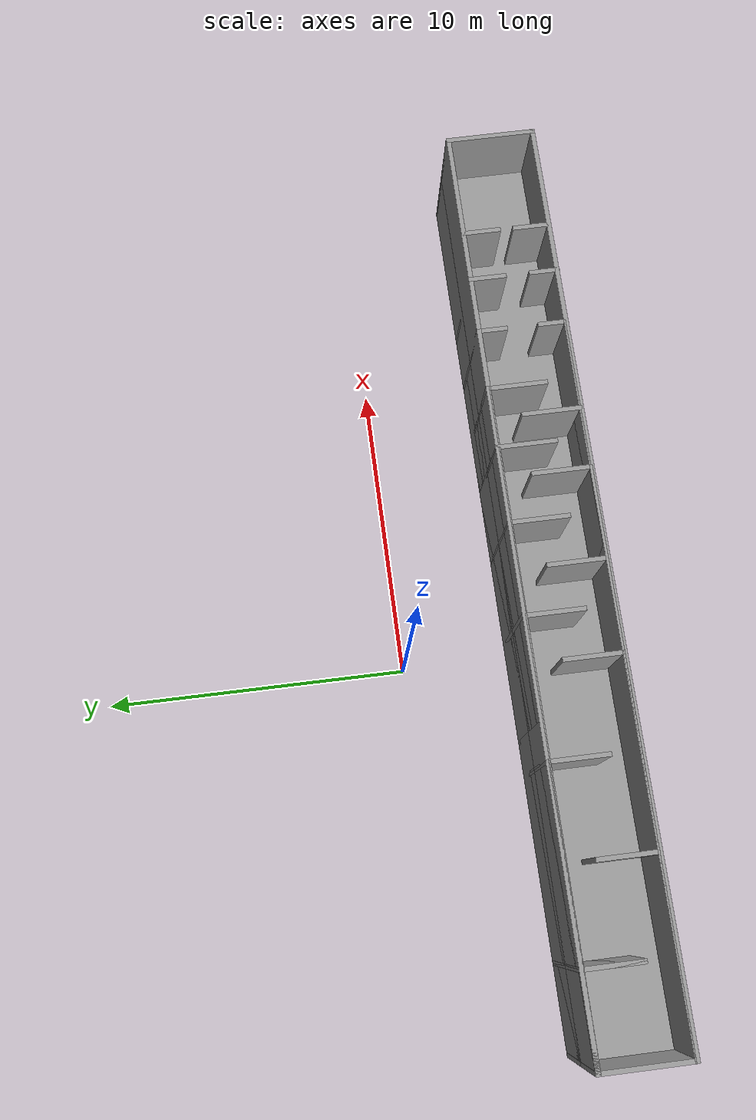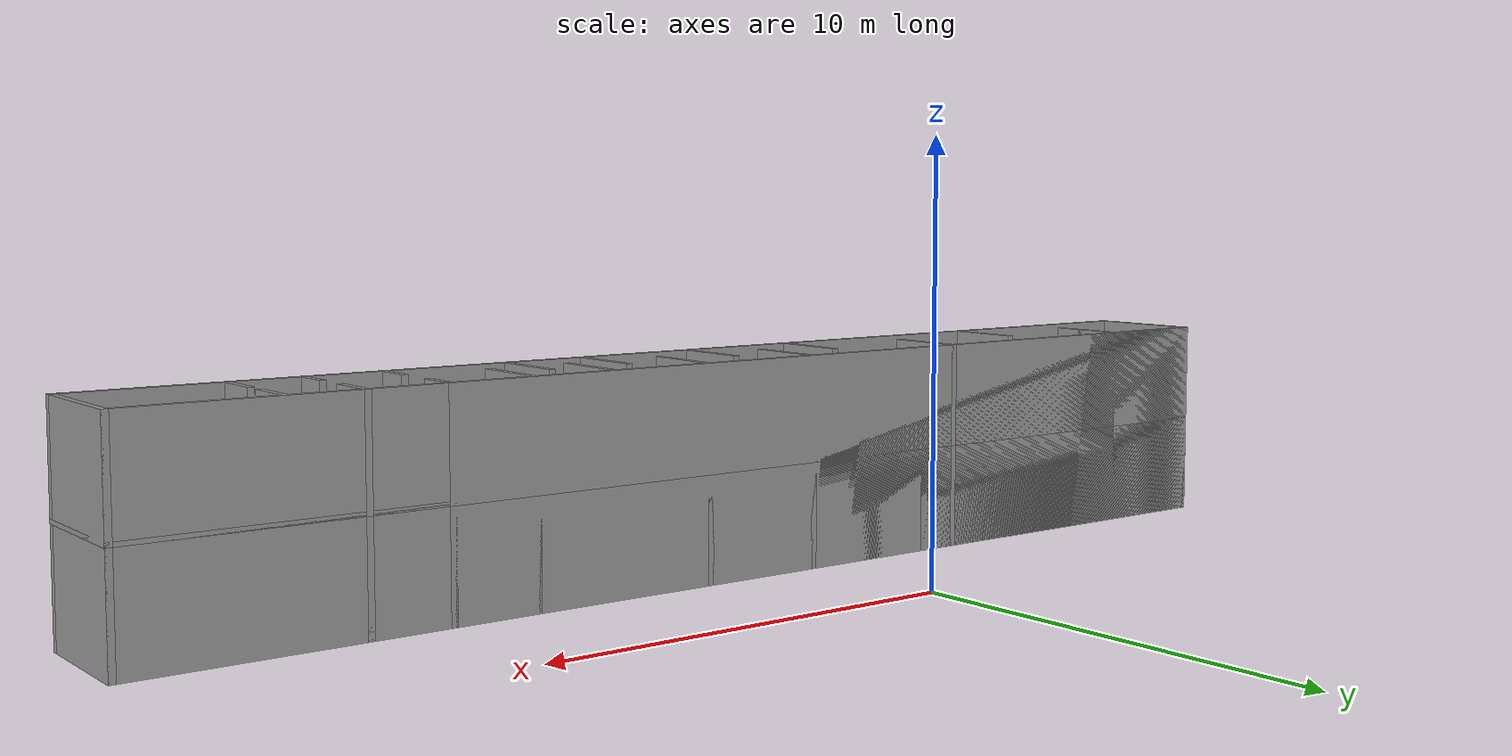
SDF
<?xml version='1.0'?>
<sdf version='1.7'>
  <model name='corridor'>
    <pose>1.995 -3.2725 0 0 -0 0</pose>
    <link name='Floor_0'>
      <collision name='Floor_0_Collision'>
        <geometry>
          <box>
            <size>30 3.01 0.1</size>
          </box>
        </geometry>
        <pose>0 0 0.05 0 -0 0</pose>
      </collision>
      <visual name='Floor_0_Visual'>
        <pose>0 0 0.05 0 -0 0</pose>
        <geometry>
          <box>
            <size>30 3.01 0.1</size>
          </box>
        </geometry>
        <material>
          <script>
            <uri>file://media/materials/scripts/gazebo.material</uri>
            <name>Gazebo/Grey</name>
          </script>
          <ambient>1 1 1 1</ambient>
        </material>
        <meta>
          <layer>1</layer>
        </meta>
      </visual>
      <pose>-0 -1.7675 2.5 0 -0 0</pose>
    </link>
    <link name='Wall_0'>
      <collision name='Wall_0_Collision'>
        <geometry>
          <box>
            <size>20 0.15 2.5</size>
          </box>
        </geometry>
        <pose>0 0 1.25 0 -0 0</pose>
      </collision>
      <visual name='Wall_0_Visual'>
        <pose>0 0 1.25 0 -0 0</pose>
        <geometry>
          <box>
            <size>20 0.15 2.5</size>
          </box>
        </geometry>
        <material>
          <script>
            <uri>file://media/materials/scripts/gazebo.material</uri>
            <name>Gazebo/Grey</name>
          </script>
          <ambient>1 1 1 1</ambient>
        </material>
        <meta>
          <layer>0</layer>
        </meta>
      </visual>
      <pose>5 -0.3375 0 0 -0 0</pose>
    </link>
    <link name='Wall_1'>
      <collision name='Wall_1_Collision'>
        <geometry>
          <box>
            <size>3 0.15 2.5</size>
          </box>
        </geometry>
        <pose>0 0 1.25 0 -0 0</pose>
      </collision>
      <visual name='Wall_1_Visual'>
        <pose>0 0 1.25 0 -0 0</pose>
        <geometry>
          <box>
            <size>3 0.15 2.5</size>
          </box>
        </geometry>
        <material>
          <script>
            <uri>file://media/materials/scripts/gazebo.material</uri>
            <name>Gazebo/Grey</name>
          </script>
          <ambient>1 1 1 1</ambient>
        </material>
        <meta>
          <layer>0</layer>
        </meta>
      </visual>
      <pose>14.925 -1.7625 0 0 -0 -1.5708</pose>
    </link>
    <link name='Wall_10'>
      <collision name='Wall_10_Collision'>
        <geometry>
          <box>
            <size>6 0.15 2.5</size>
          </box>
        </geometry>
        <pose>0 0 1.25 0 -0 0</pose>
      </collision>
      <visual name='Wall_10_Visual'>
        <pose>0 0 1.25 0 -0 0</pose>
        <geometry>
          <box>
            <size>6 0.15 2.5</size>
          </box>
        </geometry>
        <material>
          <script>
            <uri>file://media/materials/scripts/gazebo.material</uri>
            <name>Gazebo/Grey</name>
          </script>
          <ambient>1 1 1 1</ambient>
        </material>
        <meta>
          <layer>0</layer>
        </meta>
      </visual>
      <pose>-12 -3.1875 0 0 -0 0</pose>
    </link>
    <link name='Wall_11'>
      <collision name='Wall_11_Collision'>
        <geometry>
          <box>
            <size>2 0.15 2.5</size>
          </box>
        </geometry>
        <pose>0 0 1.25 0 -0 0</pose>
      </collision>
      <visual name='Wall_11_Visual'>
        <pose>0 0 1.25 0 -0 0</pose>
        <geometry>
          <box>
            <size>2 0.15 2.5</size>
          </box>
        </geometry>
        <material>
          <script>
            <uri>file://media/materials/scripts/gazebo.material</uri>
            <name>Gazebo/Grey</name>
          </script>
          <ambient>1 1 1 1</ambient>
        </material>
        <meta>
          <layer>0</layer>
        </meta>
      </visual>
      <pose>-9.075 -2.2625 0 0 -0 1.5708</pose>
    </link>
    <link name='Wall_13'>
      <collision name='Wall_13_Collision'>
        <geometry>
          <box>
            <size>9 0.15 2.5</size>
          </box>
        </geometry>
        <pose>0 0 1.25 0 -0 0</pose>
      </collision>
      <visual name='Wall_13_Visual'>
        <pose>0 0 1.25 0 -0 0</pose>
        <geometry>
          <box>
            <size>9 0.15 2.5</size>
          </box>
        </geometry>
        <material>
          <script>
            <uri>file://media/materials/scripts/gazebo.material</uri>
            <name>Gazebo/Grey</name>
          </script>
          <ambient>1 1 1 1</ambient>
        </material>
        <meta>
          <layer>0</layer>
        </meta>
      </visual>
      <pose>-10.5 -0.3375 0 0 -0 0</pose>
    </link>
    <link name='Wall_14'>
      <collision name='Wall_14_Collision'>
        <geometry>
          <box>
            <size>2 0.15 2.5</size>
          </box>
        </geometry>
        <pose>0 0 1.25 0 -0 0</pose>
      </collision>
      <visual name='Wall_14_Visual'>
        <pose>0 0 1.25 0 -0 0</pose>
        <geometry>
          <box>
            <size>2 0.15 2.5</size>
          </box>
        </geometry>
        <material>
          <script>
            <uri>file://media/materials/scripts/gazebo.material</uri>
            <name>Gazebo/Grey</name>
          </script>
          <ambient>1 1 1 1</ambient>
        </material>
        <meta>
          <layer>0</layer>
        </meta>
      </visual>
      <pose>-6.075 -1.2625 0 0 -0 -1.5708</pose>
    </link>
    <link name='Wall_16'>
      <collision name='Wall_16_Collision'>
        <geometry>
          <box>
            <size>12 0.15 2.5</size>
          </box>
        </geometry>
        <pose>0 0 1.25 0 -0 0</pose>
      </collision>
      <visual name='Wall_16_Visual'>
        <pose>0 0 1.25 0 -0 0</pose>
        <geometry>
          <box>
            <size>12 0.15 2.5</size>
          </box>
        </geometry>
        <material>
          <script>
            <uri>file://media/materials/scripts/gazebo.material</uri>
            <name>Gazebo/Grey</name>
          </script>
          <ambient>1 1 1 1</ambient>
        </material>
        <meta>
          <layer>0</layer>
        </meta>
      </visual>
      <pose>-9 -3.1875 0 0 -0 0</pose>
    </link>
    <link name='Wall_17'>
      <collision name='Wall_17_Collision'>
        <geometry>
          <box>
            <size>2 0.15 2.5</size>
          </box>
        </geometry>
        <pose>0 0 1.25 0 -0 0</pose>
      </collision>
      <visual name='Wall_17_Visual'>
        <pose>0 0 1.25 0 -0 0</pose>
        <geometry>
          <box>
            <size>2 0.15 2.5</size>
          </box>
        </geometry>
        <material>
          <script>
            <uri>file://media/materials/scripts/gazebo.material</uri>
            <name>Gazebo/Grey</name>
          </script>
          <ambient>1 1 1 1</ambient>
        </material>
        <meta>
          <layer>0</layer>
        </meta>
      </visual>
      <pose>-3.075 -2.2625 0 0 -0 1.5708</pose>
    </link>
    <link name='Wall_19'>
      <collision name='Wall_19_Collision'>
        <geometry>
          <box>
            <size>13.5 0.15 2.5</size>
          </box>
        </geometry>
        <pose>0 0 1.25 0 -0 0</pose>
      </collision>
      <visual name='Wall_19_Visual'>
        <pose>0 0 1.25 0 -0 0</pose>
        <geometry>
          <box>
            <size>13.5 0.15 2.5</size>
          </box>
        </geometry>
        <material>
          <script>
            <uri>file://media/materials/scripts/gazebo.material</uri>
            <name>Gazebo/Grey</name>
          </script>
          <ambient>1 1 1 1</ambient>
        </material>
        <meta>
          <layer>0</layer>
        </meta>
      </visual>
      <pose>-8.25 -0.3375 0 0 -0 0</pose>
    </link>
    <link name='Wall_2'>
      <collision name='Wall_2_Collision'>
        <geometry>
          <box>
            <size>30 0.15 2.5</size>
          </box>
        </geometry>
        <pose>0 0 1.25 0 -0 0</pose>
      </collision>
      <visual name='Wall_2_Visual'>
        <pose>0 0 1.25 0 -0 0</pose>
        <geometry>
          <box>
            <size>30 0.15 2.5</size>
          </box>
        </geometry>
        <material>
          <script>
            <uri>file://media/materials/scripts/gazebo.material</uri>
            <name>Gazebo/Grey</name>
          </script>
          <ambient>1 1 1 1</ambient>
        </material>
        <meta>
          <layer>0</layer>
        </meta>
      </visual>
      <pose>-0 -3.1875 0 0 -0 3.14159</pose>
    </link>
    <link name='Wall_20'>
      <collision name='Wall_20_Collision'>
        <geometry>
          <box>
            <size>2 0.15 2.5</size>
          </box>
        </geometry>
        <pose>0 0 1.25 0 -0 0</pose>
      </collision>
      <visual name='Wall_20_Visual'>
        <pose>0 0 1.25 0 -0 0</pose>
        <geometry>
          <box>
            <size>2 0.15 2.5</size>
          </box>
        </geometry>
        <material>
          <script>
            <uri>file://media/materials/scripts/gazebo.material</uri>
            <name>Gazebo/Grey</name>
          </script>
          <ambient>1 1 1 1</ambient>
        </material>
        <meta>
          <layer>0</layer>
        </meta>
      </visual>
      <pose>-1.575 -1.2625 0 0 -0 -1.5708</pose>
    </link>
    <link name='Wall_22'>
      <collision name='Wall_22_Collision'>
        <geometry>
          <box>
            <size>15 0.15 2.5</size>
          </box>
        </geometry>
        <pose>0 0 1.25 0 -0 0</pose>
      </collision>
      <visual name='Wall_22_Visual'>
        <pose>0 0 1.25 0 -0 0</pose>
        <geometry>
          <box>
            <size>15 0.15 2.5</size>
          </box>
        </geometry>
        <material>
          <script>
            <uri>file://media/materials/scripts/gazebo.material</uri>
            <name>Gazebo/Grey</name>
          </script>
          <ambient>1 1 1 1</ambient>
        </material>
        <meta>
          <layer>0</layer>
        </meta>
      </visual>
      <pose>-7.5 -3.1875 0 0 -0 0</pose>
    </link>
    <link name='Wall_23'>
      <collision name='Wall_23_Collision'>
        <geometry>
          <box>
            <size>2 0.15 2.5</size>
          </box>
        </geometry>
        <pose>0 0 1.25 0 -0 0</pose>
      </collision>
      <visual name='Wall_23_Visual'>
        <pose>0 0 1.25 0 -0 0</pose>
        <geometry>
          <box>
            <size>2 0.15 2.5</size>
          </box>
        </geometry>
        <material>
          <script>
            <uri>file://media/materials/scripts/gazebo.material</uri>
            <name>Gazebo/Grey</name>
          </script>
          <ambient>1 1 1 1</ambient>
        </material>
        <meta>
          <layer>0</layer>
        </meta>
      </visual>
      <pose>-0.075 -2.2625 0 0 -0 1.5708</pose>
    </link>
    <link name='Wall_25'>
      <collision name='Wall_25_Collision'>
        <geometry>
          <box>
            <size>16.5 0.15 2.5</size>
          </box>
        </geometry>
        <pose>0 0 1.25 0 -0 0</pose>
      </collision>
      <visual name='Wall_25_Visual'>
        <pose>0 0 1.25 0 -0 0</pose>
        <geometry>
          <box>
            <size>16.5 0.15 2.5</size>
          </box>
        </geometry>
        <material>
          <script>
            <uri>file://media/materials/scripts/gazebo.material</uri>
            <name>Gazebo/Grey</name>
          </script>
          <ambient>1 1 1 1</ambient>
        </material>
        <meta>
          <layer>0</layer>
        </meta>
      </visual>
      <pose>-6.75 -0.3375 0 0 -0 0</pose>
    </link>
    <link name='Wall_26'>
      <collision name='Wall_26_Collision'>
        <geometry>
          <box>
            <size>2 0.15 2.5</size>
          </box>
        </geometry>
        <pose>0 0 1.25 0 -0 0</pose>
      </collision>
      <visual name='Wall_26_Visual'>
        <pose>0 0 1.25 0 -0 0</pose>
        <geometry>
          <box>
            <size>2 0.15 2.5</size>
          </box>
        </geometry>
        <material>
          <script>
            <uri>file://media/materials/scripts/gazebo.material</uri>
            <name>Gazebo/Grey</name>
          </script>
          <ambient>1 1 1 1</ambient>
        </material>
        <meta>
          <layer>0</layer>
        </meta>
      </visual>
      <pose>1.425 -1.2625 0 0 -0 -1.5708</pose>
    </link>
    <link name='Wall_28'>
      <collision name='Wall_28_Collision'>
        <geometry>
          <box>
            <size>18 0.15 2.5</size>
          </box>
        </geometry>
        <pose>0 0 1.25 0 -0 0</pose>
      </collision>
      <visual name='Wall_28_Visual'>
        <pose>0 0 1.25 0 -0 0</pose>
        <geometry>
          <box>
            <size>18 0.15 2.5</size>
          </box>
        </geometry>
        <material>
          <script>
            <uri>file://media/materials/scripts/gazebo.material</uri>
            <name>Gazebo/Grey</name>
          </script>
          <ambient>1 1 1 1</ambient>
        </material>
        <meta>
          <layer>0</layer>
        </meta>
      </visual>
      <pose>-6 -3.1875 0 0 -0 0</pose>
    </link>
    <link name='Wall_29'>
      <collision name='Wall_29_Collision'>
        <geometry>
          <box>
            <size>2 0.15 2.5</size>
          </box>
        </geometry>
        <pose>0 0 1.25 0 -0 0</pose>
      </collision>
      <visual name='Wall_29_Visual'>
        <pose>0 0 1.25 0 -0 0</pose>
        <geometry>
          <box>
            <size>2 0.15 2.5</size>
          </box>
        </geometry>
        <material>
          <script>
            <uri>file://media/materials/scripts/gazebo.material</uri>
            <name>Gazebo/Grey</name>
          </script>
          <ambient>1 1 1 1</ambient>
        </material>
        <meta>
          <layer>0</layer>
        </meta>
      </visual>
      <pose>2.925 -2.2625 0 0 -0 1.5708</pose>
    </link>
    <link name='Wall_3'>
      <collision name='Wall_3_Collision'>
        <geometry>
          <box>
            <size>3 0.15 2.5</size>
          </box>
        </geometry>
        <pose>0 0 1.25 0 -0 0</pose>
      </collision>
      <visual name='Wall_3_Visual'>
        <pose>0 0 1.25 0 -0 0</pose>
        <geometry>
          <box>
            <size>3 0.15 2.5</size>
          </box>
        </geometry>
        <material>
          <script>
            <uri>file://media/materials/scripts/gazebo.material</uri>
            <name>Gazebo/Grey</name>
          </script>
          <ambient>1 1 1 1</ambient>
        </material>
        <meta>
          <layer>0</layer>
        </meta>
      </visual>
      <pose>-14.925 -1.7625 0 0 -0 1.5708</pose>
    </link>
    <link name='Wall_31'>
      <collision name='Wall_31_Collision'>
        <geometry>
          <box>
            <size>19 0.15 2.5</size>
          </box>
        </geometry>
        <pose>0 0 1.25 0 -0 0</pose>
      </collision>
      <visual name='Wall_31_Visual'>
        <pose>0 0 1.25 0 -0 0</pose>
        <geometry>
          <box>
            <size>19 0.15 2.5</size>
          </box>
        </geometry>
        <material>
          <script>
            <uri>file://media/materials/scripts/gazebo.material</uri>
            <name>Gazebo/Grey</name>
          </script>
          <ambient>1 1 1 1</ambient>
        </material>
        <meta>
          <layer>0</layer>
        </meta>
      </visual>
      <pose>-5.5 -0.3375 0 0 -0 0</pose>
    </link>
    <link name='Wall_32'>
      <collision name='Wall_32_Collision'>
        <geometry>
          <box>
            <size>2 0.15 2.5</size>
          </box>
        </geometry>
        <pose>0 0 1.25 0 -0 0</pose>
      </collision>
      <visual name='Wall_32_Visual'>
        <pose>0 0 1.25 0 -0 0</pose>
        <geometry>
          <box>
            <size>2 0.15 2.5</size>
          </box>
        </geometry>
        <material>
          <script>
            <uri>file://media/materials/scripts/gazebo.material</uri>
            <name>Gazebo/Grey</name>
          </script>
          <ambient>1 1 1 1</ambient>
        </material>
        <meta>
          <layer>0</layer>
        </meta>
      </visual>
      <pose>3.925 -1.2625 0 0 -0 -1.5708</pose>
    </link>
    <link name='Wall_34'>
      <collision name='Wall_34_Collision'>
        <geometry>
          <box>
            <size>20 0.15 2.5</size>
          </box>
        </geometry>
        <pose>0 0 1.25 0 -0 0</pose>
      </collision>
      <visual name='Wall_34_Visual'>
        <pose>0 0 1.25 0 -0 0</pose>
        <geometry>
          <box>
            <size>20 0.15 2.5</size>
          </box>
        </geometry>
        <material>
          <script>
            <uri>file://media/materials/scripts/gazebo.material</uri>
            <name>Gazebo/Grey</name>
          </script>
          <ambient>1 1 1 1</ambient>
        </material>
        <meta>
          <layer>0</layer>
        </meta>
      </visual>
      <pose>-5 -3.1875 0 0 -0 0</pose>
    </link>
    <link name='Wall_35'>
      <collision name='Wall_35_Collision'>
        <geometry>
          <box>
            <size>2 0.15 2.5</size>
          </box>
        </geometry>
        <pose>0 0 1.25 0 -0 0</pose>
      </collision>
      <visual name='Wall_35_Visual'>
        <pose>0 0 1.25 0 -0 0</pose>
        <geometry>
          <box>
            <size>2 0.15 2.5</size>
          </box>
        </geometry>
        <material>
          <script>
            <uri>file://media/materials/scripts/gazebo.material</uri>
            <name>Gazebo/Grey</name>
          </script>
          <ambient>1 1 1 1</ambient>
        </material>
        <meta>
          <layer>0</layer>
        </meta>
      </visual>
      <pose>4.925 -2.2625 0 0 -0 1.5708</pose>
    </link>
    <link name='Wall_37'>
      <collision name='Wall_37_Collision'>
        <geometry>
          <box>
            <size>21 0.15 2.5</size>
          </box>
        </geometry>
        <pose>0 0 1.25 0 -0 0</pose>
      </collision>
      <visual name='Wall_37_Visual'>
        <pose>0 0 1.25 0 -0 0</pose>
        <geometry>
          <box>
            <size>21 0.15 2.5</size>
          </box>
        </geometry>
        <material>
          <script>
            <uri>file://media/materials/scripts/gazebo.material</uri>
            <name>Gazebo/Grey</name>
          </script>
          <ambient>1 1 1 1</ambient>
        </material>
        <meta>
          <layer>0</layer>
        </meta>
      </visual>
      <pose>-4.5 -0.3375 0 0 -0 0</pose>
    </link>
    <link name='Wall_38'>
      <collision name='Wall_38_Collision'>
        <geometry>
          <box>
            <size>2 0.15 2.5</size>
          </box>
        </geometry>
        <pose>0 0 1.25 0 -0 0</pose>
      </collision>
      <visual name='Wall_38_Visual'>
        <pose>0 0 1.25 0 -0 0</pose>
        <geometry>
          <box>
            <size>2 0.15 2.5</size>
          </box>
        </geometry>
        <material>
          <script>
            <uri>file://media/materials/scripts/gazebo.material</uri>
            <name>Gazebo/Grey</name>
          </script>
          <ambient>1 1 1 1</ambient>
        </material>
        <meta>
          <layer>0</layer>
        </meta>
      </visual>
      <pose>5.925 -1.2625 0 0 -0 -1.5708</pose>
    </link>
    <link name='Wall_4'>
      <collision name='Wall_4_Collision'>
        <geometry>
          <box>
            <size>10.15 0.15 2.5</size>
          </box>
        </geometry>
        <pose>0 0 1.25 0 -0 0</pose>
      </collision>
      <visual name='Wall_4_Visual'>
        <pose>0 0 1.25 0 -0 0</pose>
        <geometry>
          <box>
            <size>10.15 0.15 2.5</size>
          </box>
        </geometry>
        <material>
          <script>
            <uri>file://media/materials/scripts/gazebo.material</uri>
            <name>Gazebo/Grey</name>
          </script>
          <ambient>1 1 1 1</ambient>
        </material>
        <meta>
          <layer>0</layer>
        </meta>
      </visual>
      <pose>-9.925 -0.3375 0 0 -0 0</pose>
    </link>
    <link name='Wall_40'>
      <collision name='Wall_40_Collision'>
        <geometry>
          <box>
            <size>23 0.15 2.5</size>
          </box>
        </geometry>
        <pose>0 0 1.25 0 -0 0</pose>
      </collision>
      <visual name='Wall_40_Visual'>
        <pose>0 0 1.25 0 -0 0</pose>
        <geometry>
          <box>
            <size>23 0.15 2.5</size>
          </box>
        </geometry>
        <material>
          <script>
            <uri>file://media/materials/scripts/gazebo.material</uri>
            <name>Gazebo/Grey</name>
          </script>
          <ambient>1 1 1 1</ambient>
        </material>
        <meta>
          <layer>0</layer>
        </meta>
      </visual>
      <pose>-3.5 -0.3375 0 0 -0 0</pose>
    </link>
    <link name='Wall_41'>
      <collision name='Wall_41_Collision'>
        <geometry>
          <box>
            <size>1 0.15 2.5</size>
          </box>
        </geometry>
        <pose>0 0 1.25 0 -0 0</pose>
      </collision>
      <visual name='Wall_41_Visual'>
        <pose>0 0 1.25 0 -0 0</pose>
        <geometry>
          <box>
            <size>1 0.15 2.5</size>
          </box>
        </geometry>
        <material>
          <script>
            <uri>file://media/materials/scripts/gazebo.material</uri>
            <name>Gazebo/Grey</name>
          </script>
          <ambient>1 1 1 1</ambient>
        </material>
        <meta>
          <layer>0</layer>
        </meta>
      </visual>
      <pose>7.925 -0.7625 0 0 -0 -1.5708</pose>
    </link>
    <link name='Wall_43'>
      <collision name='Wall_43_Collision'>
        <geometry>
          <box>
            <size>23 0.15 2.5</size>
          </box>
        </geometry>
        <pose>0 0 1.25 0 -0 0</pose>
      </collision>
      <visual name='Wall_43_Visual'>
        <pose>0 0 1.25 0 -0 0</pose>
        <geometry>
          <box>
            <size>23 0.15 2.5</size>
          </box>
        </geometry>
        <material>
          <script>
            <uri>file://media/materials/scripts/gazebo.material</uri>
            <name>Gazebo/Grey</name>
          </script>
          <ambient>1 1 1 1</ambient>
        </material>
        <meta>
          <layer>0</layer>
        </meta>
      </visual>
      <pose>-3.5 -3.1875 0 0 -0 0</pose>
    </link>
    <link name='Wall_44'>
      <collision name='Wall_44_Collision'>
        <geometry>
          <box>
            <size>1 0.15 2.5</size>
          </box>
        </geometry>
        <pose>0 0 1.25 0 -0 0</pose>
      </collision>
      <visual name='Wall_44_Visual'>
        <pose>0 0 1.25 0 -0 0</pose>
        <geometry>
          <box>
            <size>1 0.15 2.5</size>
          </box>
        </geometry>
        <material>
          <script>
            <uri>file://media/materials/scripts/gazebo.material</uri>
            <name>Gazebo/Grey</name>
          </script>
          <ambient>1 1 1 1</ambient>
        </material>
        <meta>
          <layer>0</layer>
        </meta>
      </visual>
      <pose>7.925 -2.7625 0 0 -0 1.5708</pose>
    </link>
    <link name='Wall_46'>
      <collision name='Wall_46_Collision'>
        <geometry>
          <box>
            <size>1.25 0.15 2.5</size>
          </box>
        </geometry>
        <pose>0 0 1.25 0 -0 0</pose>
      </collision>
      <visual name='Wall_46_Visual'>
        <pose>0 0 1.25 0 -0 0</pose>
        <geometry>
          <box>
            <size>1.25 0.15 2.5</size>
          </box>
        </geometry>
        <material>
          <script>
            <uri>file://media/materials/scripts/gazebo.material</uri>
            <name>Gazebo/Grey</name>
          </script>
          <ambient>1 1 1 1</ambient>
        </material>
        <meta>
          <layer>0</layer>
        </meta>
      </visual>
      <pose>9.775 -0.8875 0 0 -0 -1.5708</pose>
    </link>
    <link name='Wall_48'>
      <collision name='Wall_48_Collision'>
        <geometry>
          <box>
            <size>1 0.15 2.5</size>
          </box>
        </geometry>
        <pose>0 0 1.25 0 -0 0</pose>
      </collision>
      <visual name='Wall_48_Visual'>
        <pose>0 0 1.25 0 -0 0</pose>
        <geometry>
          <box>
            <size>1 0.15 2.5</size>
          </box>
        </geometry>
        <material>
          <script>
            <uri>file://media/materials/scripts/gazebo.material</uri>
            <name>Gazebo/Grey</name>
          </script>
          <ambient>1 1 1 1</ambient>
        </material>
        <meta>
          <layer>0</layer>
        </meta>
      </visual>
      <pose>9.775 -2.7725 0 0 -0 1.5708</pose>
    </link>
    <link name='Wall_50'>
      <collision name='Wall_50_Collision'>
        <geometry>
          <box>
            <size>1.25 0.15 2.5</size>
          </box>
        </geometry>
        <pose>0 0 1.25 0 -0 0</pose>
      </collision>
      <visual name='Wall_50_Visual'>
        <pose>0 0 1.25 0 -0 0</pose>
        <geometry>
          <box>
            <size>1.25 0.15 2.5</size>
          </box>
        </geometry>
        <material>
          <script>
            <uri>file://media/materials/scripts/gazebo.material</uri>
            <name>Gazebo/Grey</name>
          </script>
          <ambient>1 1 1 1</ambient>
        </material>
        <meta>
          <layer>0</layer>
        </meta>
      </visual>
      <pose>11.445 -0.9475 0 0 -0 -1.5708</pose>
    </link>
    <link name='Wall_53'>
      <collision name='Wall_53_Collision'>
        <geometry>
          <box>
            <size>1.25 0.15 2.5</size>
          </box>
        </geometry>
        <pose>0 0 1.25 0 -0 0</pose>
      </collision>
      <visual name='Wall_53_Visual'>
        <pose>0 0 1.25 0 -0 0</pose>
        <geometry>
          <box>
            <size>1.25 0.15 2.5</size>
          </box>
        </geometry>
        <material>
          <script>
            <uri>file://media/materials/scripts/gazebo.material</uri>
            <name>Gazebo/Grey</name>
          </script>
          <ambient>1 1 1 1</ambient>
        </material>
        <meta>
          <layer>0</layer>
        </meta>
      </visual>
      <pose>11.435 -2.6075 0 0 -0 1.5708</pose>
    </link>
    <link name='Wall_55'>
      <collision name='Wall_55_Collision'>
        <geometry>
          <box>
            <size>20 0.15 2.5</size>
          </box>
        </geometry>
        <pose>0 0 1.25 0 -0 0</pose>
      </collision>
      <visual name='Wall_55_Visual'>
        <pose>0 0 1.25 0 -0 0</pose>
        <geometry>
          <box>
            <size>20 0.15 2.5</size>
          </box>
        </geometry>
        <material>
          <script>
            <uri>file://media/materials/scripts/gazebo.material</uri>
            <name>Gazebo/Grey</name>
          </script>
          <ambient>1 1 1 1</ambient>
        </material>
        <meta>
          <layer>1</layer>
        </meta>
      </visual>
      <pose>5 -0.3375 2.5 0 -0 0</pose>
    </link>
    <link name='Wall_56'>
      <collision name='Wall_56_Collision'>
        <geometry>
          <box>
            <size>3 0.15 2.5</size>
          </box>
        </geometry>
        <pose>0 0 1.25 0 -0 0</pose>
      </collision>
      <visual name='Wall_56_Visual'>
        <pose>0 0 1.25 0 -0 0</pose>
        <geometry>
          <box>
            <size>3 0.15 2.5</size>
          </box>
        </geometry>
        <material>
          <script>
            <uri>file://media/materials/scripts/gazebo.material</uri>
            <name>Gazebo/Grey</name>
          </script>
          <ambient>1 1 1 1</ambient>
        </material>
        <meta>
          <layer>1</layer>
        </meta>
      </visual>
      <pose>14.925 -1.7625 2.5 0 -0 -1.5708</pose>
    </link>
    <link name='Wall_57'>
      <collision name='Wall_57_Collision'>
        <geometry>
          <box>
            <size>30 0.15 2.5</size>
          </box>
        </geometry>
        <pose>0 0 1.25 0 -0 0</pose>
      </collision>
      <visual name='Wall_57_Visual'>
        <pose>0 0 1.25 0 -0 0</pose>
        <geometry>
          <box>
            <size>30 0.15 2.5</size>
          </box>
        </geometry>
        <material>
          <script>
            <uri>file://media/materials/scripts/gazebo.material</uri>
            <name>Gazebo/Grey</name>
          </script>
          <ambient>1 1 1 1</ambient>
        </material>
        <meta>
          <layer>1</layer>
        </meta>
      </visual>
      <pose>-0 -3.1875 2.5 0 -0 3.14159</pose>
    </link>
    <link name='Wall_58'>
      <collision name='Wall_58_Collision'>
        <geometry>
          <box>
            <size>3 0.15 2.5</size>
          </box>
        </geometry>
        <pose>0 0 1.25 0 -0 0</pose>
      </collision>
      <visual name='Wall_58_Visual'>
        <pose>0 0 1.25 0 -0 0</pose>
        <geometry>
          <box>
            <size>3 0.15 2.5</size>
          </box>
        </geometry>
        <material>
          <script>
            <uri>file://media/materials/scripts/gazebo.material</uri>
            <name>Gazebo/Grey</name>
          </script>
          <ambient>1 1 1 1</ambient>
        </material>
        <meta>
          <layer>1</layer>
        </meta>
      </visual>
      <pose>-14.925 -1.7625 2.5 0 -0 1.5708</pose>
    </link>
    <link name='Wall_59'>
      <collision name='Wall_59_Collision'>
        <geometry>
          <box>
            <size>10.15 0.15 2.5</size>
          </box>
        </geometry>
        <pose>0 0 1.25 0 -0 0</pose>
      </collision>
      <visual name='Wall_59_Visual'>
        <pose>0 0 1.25 0 -0 0</pose>
        <geometry>
          <box>
            <size>10.15 0.15 2.5</size>
          </box>
        </geometry>
        <material>
          <script>
            <uri>file://media/materials/scripts/gazebo.material</uri>
            <name>Gazebo/Grey</name>
          </script>
          <ambient>1 1 1 1</ambient>
        </material>
        <meta>
          <layer>1</layer>
        </meta>
      </visual>
      <pose>-9.925 -0.3375 2.5 0 -0 0</pose>
    </link>
    <link name='Wall_6'>
      <collision name='Wall_6_Collision'>
        <geometry>
          <box>
            <size>3 0.15 2.5</size>
          </box>
        </geometry>
        <pose>0 0 1.25 0 -0 0</pose>
      </collision>
      <visual name='Wall_6_Visual'>
        <pose>0 0 1.25 0 -0 0</pose>
        <geometry>
          <box>
            <size>3 0.15 2.5</size>
          </box>
        </geometry>
        <material>
          <script>
            <uri>file://media/materials/scripts/gazebo.material</uri>
            <name>Gazebo/Grey</name>
          </script>
          <ambient>1 1 1 1</ambient>
        </material>
        <meta>
          <layer>0</layer>
        </meta>
      </visual>
      <pose>-13.5 -0.3375 0 0 -0 0</pose>
    </link>
    <link name='Wall_60'>
      <collision name='Wall_60_Collision'>
        <geometry>
          <box>
            <size>3 0.15 2.5</size>
          </box>
        </geometry>
        <pose>0 0 1.25 0 -0 0</pose>
      </collision>
      <visual name='Wall_60_Visual'>
        <pose>0 0 1.25 0 -0 0</pose>
        <geometry>
          <box>
            <size>3 0.15 2.5</size>
          </box>
        </geometry>
        <material>
          <script>
            <uri>file://media/materials/scripts/gazebo.material</uri>
            <name>Gazebo/Grey</name>
          </script>
          <ambient>1 1 1 1</ambient>
        </material>
        <meta>
          <layer>1</layer>
        </meta>
      </visual>
      <pose>-13.5 -0.3375 2.5 0 -0 0</pose>
    </link>
    <link name='Wall_61'>
      <collision name='Wall_61_Collision'>
        <geometry>
          <box>
            <size>2 0.15 2.5</size>
          </box>
        </geometry>
        <pose>0 0 1.25 0 -0 0</pose>
      </collision>
      <visual name='Wall_61_Visual'>
        <pose>0 0 1.25 0 -0 0</pose>
        <geometry>
          <box>
            <size>2 0.15 2.5</size>
          </box>
        </geometry>
        <material>
          <script>
            <uri>file://media/materials/scripts/gazebo.material</uri>
            <name>Gazebo/Grey</name>
          </script>
          <ambient>1 1 1 1</ambient>
        </material>
        <meta>
          <layer>1</layer>
        </meta>
      </visual>
      <pose>-12.075 -1.2625 2.5 0 -0 -1.5708</pose>
    </link>
    <link name='Wall_62'>
      <collision name='Wall_62_Collision'>
        <geometry>
          <box>
            <size>2 0.15 2.5</size>
          </box>
        </geometry>
        <pose>0 0 1.25 0 -0 0</pose>
      </collision>
      <visual name='Wall_62_Visual'>
        <pose>0 0 1.25 0 -0 0</pose>
        <geometry>
          <box>
            <size>2 0.15 2.5</size>
          </box>
        </geometry>
        <material>
          <script>
            <uri>file://media/materials/scripts/gazebo.material</uri>
            <name>Gazebo/Grey</name>
          </script>
          <ambient>1 1 1 1</ambient>
        </material>
        <meta>
          <layer>1</layer>
        </meta>
      </visual>
      <pose>-12.075 -1.2625 2.5 0 -0 1.5708</pose>
    </link>
    <link name='Wall_63'>
      <collision name='Wall_63_Collision'>
        <geometry>
          <box>
            <size>6 0.15 2.5</size>
          </box>
        </geometry>
        <pose>0 0 1.25 0 -0 0</pose>
      </collision>
      <visual name='Wall_63_Visual'>
        <pose>0 0 1.25 0 -0 0</pose>
        <geometry>
          <box>
            <size>6 0.15 2.5</size>
          </box>
        </geometry>
        <material>
          <script>
            <uri>file://media/materials/scripts/gazebo.material</uri>
            <name>Gazebo/Grey</name>
          </script>
          <ambient>1 1 1 1</ambient>
        </material>
        <meta>
          <layer>1</layer>
        </meta>
      </visual>
      <pose>-12 -3.1875 2.5 0 -0 0</pose>
    </link>
    <link name='Wall_64'>
      <collision name='Wall_64_Collision'>
        <geometry>
          <box>
            <size>2 0.15 2.5</size>
          </box>
        </geometry>
        <pose>0 0 1.25 0 -0 0</pose>
      </collision>
      <visual name='Wall_64_Visual'>
        <pose>0 0 1.25 0 -0 0</pose>
        <geometry>
          <box>
            <size>2 0.15 2.5</size>
          </box>
        </geometry>
        <material>
          <script>
            <uri>file://media/materials/scripts/gazebo.material</uri>
            <name>Gazebo/Grey</name>
          </script>
          <ambient>1 1 1 1</ambient>
        </material>
        <meta>
          <layer>1</layer>
        </meta>
      </visual>
      <pose>-9.075 -2.2625 2.5 0 -0 1.5708</pose>
    </link>
    <link name='Wall_65'>
      <collision name='Wall_65_Collision'>
        <geometry>
          <box>
            <size>9 0.15 2.5</size>
          </box>
        </geometry>
        <pose>0 0 1.25 0 -0 0</pose>
      </collision>
      <visual name='Wall_65_Visual'>
        <pose>0 0 1.25 0 -0 0</pose>
        <geometry>
          <box>
            <size>9 0.15 2.5</size>
          </box>
        </geometry>
        <material>
          <script>
            <uri>file://media/materials/scripts/gazebo.material</uri>
            <name>Gazebo/Grey</name>
          </script>
          <ambient>1 1 1 1</ambient>
        </material>
        <meta>
          <layer>1</layer>
        </meta>
      </visual>
      <pose>-10.5 -0.3375 2.5 0 -0 0</pose>
    </link>
    <link name='Wall_66'>
      <collision name='Wall_66_Collision'>
        <geometry>
          <box>
            <size>2 0.15 2.5</size>
          </box>
        </geometry>
        <pose>0 0 1.25 0 -0 0</pose>
      </collision>
      <visual name='Wall_66_Visual'>
        <pose>0 0 1.25 0 -0 0</pose>
        <geometry>
          <box>
            <size>2 0.15 2.5</size>
          </box>
        </geometry>
        <material>
          <script>
            <uri>file://media/materials/scripts/gazebo.material</uri>
            <name>Gazebo/Grey</name>
          </script>
          <ambient>1 1 1 1</ambient>
        </material>
        <meta>
          <layer>1</layer>
        </meta>
      </visual>
      <pose>-6.075 -1.2625 2.5 0 -0 -1.5708</pose>
    </link>
    <link name='Wall_67'>
      <collision name='Wall_67_Collision'>
        <geometry>
          <box>
            <size>12 0.15 2.5</size>
          </box>
        </geometry>
        <pose>0 0 1.25 0 -0 0</pose>
      </collision>
      <visual name='Wall_67_Visual'>
        <pose>0 0 1.25 0 -0 0</pose>
        <geometry>
          <box>
            <size>12 0.15 2.5</size>
          </box>
        </geometry>
        <material>
          <script>
            <uri>file://media/materials/scripts/gazebo.material</uri>
            <name>Gazebo/Grey</name>
          </script>
          <ambient>1 1 1 1</ambient>
        </material>
        <meta>
          <layer>1</layer>
        </meta>
      </visual>
      <pose>-9 -3.1875 2.5 0 -0 0</pose>
    </link>
    <link name='Wall_68'>
      <collision name='Wall_68_Collision'>
        <geometry>
          <box>
            <size>2 0.15 2.5</size>
          </box>
        </geometry>
        <pose>0 0 1.25 0 -0 0</pose>
      </collision>
      <visual name='Wall_68_Visual'>
        <pose>0 0 1.25 0 -0 0</pose>
        <geometry>
          <box>
            <size>2 0.15 2.5</size>
          </box>
        </geometry>
        <material>
          <script>
            <uri>file://media/materials/scripts/gazebo.material</uri>
            <name>Gazebo/Grey</name>
          </script>
          <ambient>1 1 1 1</ambient>
        </material>
        <meta>
          <layer>1</layer>
        </meta>
      </visual>
      <pose>-3.075 -2.2625 2.5 0 -0 1.5708</pose>
    </link>
    <link name='Wall_69'>
      <collision name='Wall_69_Collision'>
        <geometry>
          <box>
            <size>13.5 0.15 2.5</size>
          </box>
        </geometry>
        <pose>0 0 1.25 0 -0 0</pose>
      </collision>
      <visual name='Wall_69_Visual'>
        <pose>0 0 1.25 0 -0 0</pose>
        <geometry>
          <box>
            <size>13.5 0.15 2.5</size>
          </box>
        </geometry>
        <material>
          <script>
            <uri>file://media/materials/scripts/gazebo.material</uri>
            <name>Gazebo/Grey</name>
          </script>
          <ambient>1 1 1 1</ambient>
        </material>
        <meta>
          <layer>1</layer>
        </meta>
      </visual>
      <pose>-8.25 -0.3375 2.5 0 -0 0</pose>
    </link>
    <link name='Wall_7'>
      <collision name='Wall_7_Collision'>
        <geometry>
          <box>
            <size>2 0.15 2.5</size>
          </box>
        </geometry>
        <pose>0 0 1.25 0 -0 0</pose>
      </collision>
      <visual name='Wall_7_Visual'>
        <pose>0 0 1.25 0 -0 0</pose>
        <geometry>
          <box>
            <size>2 0.15 2.5</size>
          </box>
        </geometry>
        <material>
          <script>
            <uri>file://media/materials/scripts/gazebo.material</uri>
            <name>Gazebo/Grey</name>
          </script>
          <ambient>1 1 1 1</ambient>
        </material>
        <meta>
          <layer>0</layer>
        </meta>
      </visual>
      <pose>-12.075 -1.2625 0 0 -0 -1.5708</pose>
    </link>
    <link name='Wall_70'>
      <collision name='Wall_70_Collision'>
        <geometry>
          <box>
            <size>2 0.15 2.5</size>
          </box>
        </geometry>
        <pose>0 0 1.25 0 -0 0</pose>
      </collision>
      <visual name='Wall_70_Visual'>
        <pose>0 0 1.25 0 -0 0</pose>
        <geometry>
          <box>
            <size>2 0.15 2.5</size>
          </box>
        </geometry>
        <material>
          <script>
            <uri>file://media/materials/scripts/gazebo.material</uri>
            <name>Gazebo/Grey</name>
          </script>
          <ambient>1 1 1 1</ambient>
        </material>
        <meta>
          <layer>1</layer>
        </meta>
      </visual>
      <pose>-1.575 -1.2625 2.5 0 -0 -1.5708</pose>
    </link>
    <link name='Wall_71'>
      <collision name='Wall_71_Collision'>
        <geometry>
          <box>
            <size>15 0.15 2.5</size>
          </box>
        </geometry>
        <pose>0 0 1.25 0 -0 0</pose>
      </collision>
      <visual name='Wall_71_Visual'>
        <pose>0 0 1.25 0 -0 0</pose>
        <geometry>
          <box>
            <size>15 0.15 2.5</size>
          </box>
        </geometry>
        <material>
          <script>
            <uri>file://media/materials/scripts/gazebo.material</uri>
            <name>Gazebo/Grey</name>
          </script>
          <ambient>1 1 1 1</ambient>
        </material>
        <meta>
          <layer>1</layer>
        </meta>
      </visual>
      <pose>-7.5 -3.1875 2.5 0 -0 0</pose>
    </link>
    <link name='Wall_72'>
      <collision name='Wall_72_Collision'>
        <geometry>
          <box>
            <size>2 0.15 2.5</size>
          </box>
        </geometry>
        <pose>0 0 1.25 0 -0 0</pose>
      </collision>
      <visual name='Wall_72_Visual'>
        <pose>0 0 1.25 0 -0 0</pose>
        <geometry>
          <box>
            <size>2 0.15 2.5</size>
          </box>
        </geometry>
        <material>
          <script>
            <uri>file://media/materials/scripts/gazebo.material</uri>
            <name>Gazebo/Grey</name>
          </script>
          <ambient>1 1 1 1</ambient>
        </material>
        <meta>
          <layer>1</layer>
        </meta>
      </visual>
      <pose>-0.075 -2.2625 2.5 0 -0 1.5708</pose>
    </link>
    <link name='Wall_73'>
      <collision name='Wall_73_Collision'>
        <geometry>
          <box>
            <size>16.5 0.15 2.5</size>
          </box>
        </geometry>
        <pose>0 0 1.25 0 -0 0</pose>
      </collision>
      <visual name='Wall_73_Visual'>
        <pose>0 0 1.25 0 -0 0</pose>
        <geometry>
          <box>
            <size>16.5 0.15 2.5</size>
          </box>
        </geometry>
        <material>
          <script>
            <uri>file://media/materials/scripts/gazebo.material</uri>
            <name>Gazebo/Grey</name>
          </script>
          <ambient>1 1 1 1</ambient>
        </material>
        <meta>
          <layer>1</layer>
        </meta>
      </visual>
      <pose>-6.75 -0.3375 2.5 0 -0 0</pose>
    </link>
    <link name='Wall_74'>
      <collision name='Wall_74_Collision'>
        <geometry>
          <box>
            <size>2 0.15 2.5</size>
          </box>
        </geometry>
        <pose>0 0 1.25 0 -0 0</pose>
      </collision>
      <visual name='Wall_74_Visual'>
        <pose>0 0 1.25 0 -0 0</pose>
        <geometry>
          <box>
            <size>2 0.15 2.5</size>
          </box>
        </geometry>
        <material>
          <script>
            <uri>file://media/materials/scripts/gazebo.material</uri>
            <name>Gazebo/Grey</name>
          </script>
          <ambient>1 1 1 1</ambient>
        </material>
        <meta>
          <layer>1</layer>
        </meta>
      </visual>
      <pose>1.425 -1.2625 2.5 0 -0 -1.5708</pose>
    </link>
    <link name='Wall_75'>
      <collision name='Wall_75_Collision'>
        <geometry>
          <box>
            <size>18 0.15 2.5</size>
          </box>
        </geometry>
        <pose>0 0 1.25 0 -0 0</pose>
      </collision>
      <visual name='Wall_75_Visual'>
        <pose>0 0 1.25 0 -0 0</pose>
        <geometry>
          <box>
            <size>18 0.15 2.5</size>
          </box>
        </geometry>
        <material>
          <script>
            <uri>file://media/materials/scripts/gazebo.material</uri>
            <name>Gazebo/Grey</name>
          </script>
          <ambient>1 1 1 1</ambient>
        </material>
        <meta>
          <layer>1</layer>
        </meta>
      </visual>
      <pose>-6 -3.1875 2.5 0 -0 0</pose>
    </link>
    <link name='Wall_76'>
      <collision name='Wall_76_Collision'>
        <geometry>
          <box>
            <size>2 0.15 2.5</size>
          </box>
        </geometry>
        <pose>0 0 1.25 0 -0 0</pose>
      </collision>
      <visual name='Wall_76_Visual'>
        <pose>0 0 1.25 0 -0 0</pose>
        <geometry>
          <box>
            <size>2 0.15 2.5</size>
          </box>
        </geometry>
        <material>
          <script>
            <uri>file://media/materials/scripts/gazebo.material</uri>
            <name>Gazebo/Grey</name>
          </script>
          <ambient>1 1 1 1</ambient>
        </material>
        <meta>
          <layer>1</layer>
        </meta>
      </visual>
      <pose>2.925 -2.2625 2.5 0 -0 1.5708</pose>
    </link>
    <link name='Wall_77'>
      <collision name='Wall_77_Collision'>
        <geometry>
          <box>
            <size>19 0.15 2.5</size>
          </box>
        </geometry>
        <pose>0 0 1.25 0 -0 0</pose>
      </collision>
      <visual name='Wall_77_Visual'>
        <pose>0 0 1.25 0 -0 0</pose>
        <geometry>
          <box>
            <size>19 0.15 2.5</size>
          </box>
        </geometry>
        <material>
          <script>
            <uri>file://media/materials/scripts/gazebo.material</uri>
            <name>Gazebo/Grey</name>
          </script>
          <ambient>1 1 1 1</ambient>
        </material>
        <meta>
          <layer>1</layer>
        </meta>
      </visual>
      <pose>-5.5 -0.3375 2.5 0 -0 0</pose>
    </link>
    <link name='Wall_78'>
      <collision name='Wall_78_Collision'>
        <geometry>
          <box>
            <size>2 0.15 2.5</size>
          </box>
        </geometry>
        <pose>0 0 1.25 0 -0 0</pose>
      </collision>
      <visual name='Wall_78_Visual'>
        <pose>0 0 1.25 0 -0 0</pose>
        <geometry>
          <box>
            <size>2 0.15 2.5</size>
          </box>
        </geometry>
        <material>
          <script>
            <uri>file://media/materials/scripts/gazebo.material</uri>
            <name>Gazebo/Grey</name>
          </script>
          <ambient>1 1 1 1</ambient>
        </material>
        <meta>
          <layer>1</layer>
        </meta>
      </visual>
      <pose>3.925 -1.2625 2.5 0 -0 -1.5708</pose>
    </link>
    <link name='Wall_79'>
      <collision name='Wall_79_Collision'>
        <geometry>
          <box>
            <size>20 0.15 2.5</size>
          </box>
        </geometry>
        <pose>0 0 1.25 0 -0 0</pose>
      </collision>
      <visual name='Wall_79_Visual'>
        <pose>0 0 1.25 0 -0 0</pose>
        <geometry>
          <box>
            <size>20 0.15 2.5</size>
          </box>
        </geometry>
        <material>
          <script>
            <uri>file://media/materials/scripts/gazebo.material</uri>
            <name>Gazebo/Grey</name>
          </script>
          <ambient>1 1 1 1</ambient>
        </material>
        <meta>
          <layer>1</layer>
        </meta>
      </visual>
      <pose>-5 -3.1875 2.5 0 -0 0</pose>
    </link>
    <link name='Wall_8'>
      <collision name='Wall_8_Collision'>
        <geometry>
          <box>
            <size>2 0.15 2.5</size>
          </box>
        </geometry>
        <pose>0 0 1.25 0 -0 0</pose>
      </collision>
      <visual name='Wall_8_Visual'>
        <pose>0 0 1.25 0 -0 0</pose>
        <geometry>
          <box>
            <size>2 0.15 2.5</size>
          </box>
        </geometry>
        <material>
          <script>
            <uri>file://media/materials/scripts/gazebo.material</uri>
            <name>Gazebo/Grey</name>
          </script>
          <ambient>1 1 1 1</ambient>
        </material>
        <meta>
          <layer>0</layer>
        </meta>
      </visual>
      <pose>-12.075 -1.2625 0 0 -0 1.5708</pose>
    </link>
    <link name='Wall_80'>
      <collision name='Wall_80_Collision'>
        <geometry>
          <box>
            <size>2 0.15 2.5</size>
          </box>
        </geometry>
        <pose>0 0 1.25 0 -0 0</pose>
      </collision>
      <visual name='Wall_80_Visual'>
        <pose>0 0 1.25 0 -0 0</pose>
        <geometry>
          <box>
            <size>2 0.15 2.5</size>
          </box>
        </geometry>
        <material>
          <script>
            <uri>file://media/materials/scripts/gazebo.material</uri>
            <name>Gazebo/Grey</name>
          </script>
          <ambient>1 1 1 1</ambient>
        </material>
        <meta>
          <layer>1</layer>
        </meta>
      </visual>
      <pose>4.925 -2.2625 2.5 0 -0 1.5708</pose>
    </link>
    <link name='Wall_81'>
      <collision name='Wall_81_Collision'>
        <geometry>
          <box>
            <size>21 0.15 2.5</size>
          </box>
        </geometry>
        <pose>0 0 1.25 0 -0 0</pose>
      </collision>
      <visual name='Wall_81_Visual'>
        <pose>0 0 1.25 0 -0 0</pose>
        <geometry>
          <box>
            <size>21 0.15 2.5</size>
          </box>
        </geometry>
        <material>
          <script>
            <uri>file://media/materials/scripts/gazebo.material</uri>
            <name>Gazebo/Grey</name>
          </script>
          <ambient>1 1 1 1</ambient>
        </material>
        <meta>
          <layer>1</layer>
        </meta>
      </visual>
      <pose>-4.5 -0.3375 2.5 0 -0 0</pose>
    </link>
    <link name='Wall_82'>
      <collision name='Wall_82_Collision'>
        <geometry>
          <box>
            <size>2 0.15 2.5</size>
          </box>
        </geometry>
        <pose>0 0 1.25 0 -0 0</pose>
      </collision>
      <visual name='Wall_82_Visual'>
        <pose>0 0 1.25 0 -0 0</pose>
        <geometry>
          <box>
            <size>2 0.15 2.5</size>
          </box>
        </geometry>
        <material>
          <script>
            <uri>file://media/materials/scripts/gazebo.material</uri>
            <name>Gazebo/Grey</name>
          </script>
          <ambient>1 1 1 1</ambient>
        </material>
        <meta>
          <layer>1</layer>
        </meta>
      </visual>
      <pose>5.925 -1.2625 2.5 0 -0 -1.5708</pose>
    </link>
    <link name='Wall_83'>
      <collision name='Wall_83_Collision'>
        <geometry>
          <box>
            <size>23 0.15 2.5</size>
          </box>
        </geometry>
        <pose>0 0 1.25 0 -0 0</pose>
      </collision>
      <visual name='Wall_83_Visual'>
        <pose>0 0 1.25 0 -0 0</pose>
        <geometry>
          <box>
            <size>23 0.15 2.5</size>
          </box>
        </geometry>
        <material>
          <script>
            <uri>file://media/materials/scripts/gazebo.material</uri>
            <name>Gazebo/Grey</name>
          </script>
          <ambient>1 1 1 1</ambient>
        </material>
        <meta>
          <layer>1</layer>
        </meta>
      </visual>
      <pose>-3.5 -0.3375 2.5 0 -0 0</pose>
    </link>
    <link name='Wall_84'>
      <collision name='Wall_84_Collision'>
        <geometry>
          <box>
            <size>1 0.15 2.5</size>
          </box>
        </geometry>
        <pose>0 0 1.25 0 -0 0</pose>
      </collision>
      <visual name='Wall_84_Visual'>
        <pose>0 0 1.25 0 -0 0</pose>
        <geometry>
          <box>
            <size>1 0.15 2.5</size>
          </box>
        </geometry>
        <material>
          <script>
            <uri>file://media/materials/scripts/gazebo.material</uri>
            <name>Gazebo/Grey</name>
          </script>
          <ambient>1 1 1 1</ambient>
        </material>
        <meta>
          <layer>1</layer>
        </meta>
      </visual>
      <pose>7.925 -0.7625 2.5 0 -0 -1.5708</pose>
    </link>
    <link name='Wall_85'>
      <collision name='Wall_85_Collision'>
        <geometry>
          <box>
            <size>23 0.15 2.5</size>
          </box>
        </geometry>
        <pose>0 0 1.25 0 -0 0</pose>
      </collision>
      <visual name='Wall_85_Visual'>
        <pose>0 0 1.25 0 -0 0</pose>
        <geometry>
          <box>
            <size>23 0.15 2.5</size>
          </box>
        </geometry>
        <material>
          <script>
            <uri>file://media/materials/scripts/gazebo.material</uri>
            <name>Gazebo/Grey</name>
          </script>
          <ambient>1 1 1 1</ambient>
        </material>
        <meta>
          <layer>1</layer>
        </meta>
      </visual>
      <pose>-3.5 -3.1875 2.5 0 -0 0</pose>
    </link>
    <link name='Wall_86'>
      <collision name='Wall_86_Collision'>
        <geometry>
          <box>
            <size>1 0.15 2.5</size>
          </box>
        </geometry>
        <pose>0 0 1.25 0 -0 0</pose>
      </collision>
      <visual name='Wall_86_Visual'>
        <pose>0 0 1.25 0 -0 0</pose>
        <geometry>
          <box>
            <size>1 0.15 2.5</size>
          </box>
        </geometry>
        <material>
          <script>
            <uri>file://media/materials/scripts/gazebo.material</uri>
            <name>Gazebo/Grey</name>
          </script>
          <ambient>1 1 1 1</ambient>
        </material>
        <meta>
          <layer>1</layer>
        </meta>
      </visual>
      <pose>7.925 -2.7625 2.5 0 -0 1.5708</pose>
    </link>
    <link name='Wall_87'>
      <collision name='Wall_87_Collision'>
        <geometry>
          <box>
            <size>1.25 0.15 2.5</size>
          </box>
        </geometry>
        <pose>0 0 1.25 0 -0 0</pose>
      </collision>
      <visual name='Wall_87_Visual'>
        <pose>0 0 1.25 0 -0 0</pose>
        <geometry>
          <box>
            <size>1.25 0.15 2.5</size>
          </box>
        </geometry>
        <material>
          <script>
            <uri>file://media/materials/scripts/gazebo.material</uri>
            <name>Gazebo/Grey</name>
          </script>
          <ambient>1 1 1 1</ambient>
        </material>
        <meta>
          <layer>1</layer>
        </meta>
      </visual>
      <pose>9.775 -0.8875 2.5 0 -0 -1.5708</pose>
    </link>
    <link name='Wall_88'>
      <collision name='Wall_88_Collision'>
        <geometry>
          <box>
            <size>1 0.15 2.5</size>
          </box>
        </geometry>
        <pose>0 0 1.25 0 -0 0</pose>
      </collision>
      <visual name='Wall_88_Visual'>
        <pose>0 0 1.25 0 -0 0</pose>
        <geometry>
          <box>
            <size>1 0.15 2.5</size>
          </box>
        </geometry>
        <material>
          <script>
            <uri>file://media/materials/scripts/gazebo.material</uri>
            <name>Gazebo/Grey</name>
          </script>
          <ambient>1 1 1 1</ambient>
        </material>
        <meta>
          <layer>1</layer>
        </meta>
      </visual>
      <pose>9.775 -2.7725 2.5 0 -0 1.5708</pose>
    </link>
    <link name='Wall_89'>
      <collision name='Wall_89_Collision'>
        <geometry>
          <box>
            <size>1.25 0.15 2.5</size>
          </box>
        </geometry>
        <pose>0 0 1.25 0 -0 0</pose>
      </collision>
      <visual name='Wall_89_Visual'>
        <pose>0 0 1.25 0 -0 0</pose>
        <geometry>
          <box>
            <size>1.25 0.15 2.5</size>
          </box>
        </geometry>
        <material>
          <script>
            <uri>file://media/materials/scripts/gazebo.material</uri>
            <name>Gazebo/Grey</name>
          </script>
          <ambient>1 1 1 1</ambient>
        </material>
        <meta>
          <layer>1</layer>
        </meta>
      </visual>
      <pose>11.445 -0.9475 2.5 0 -0 -1.5708</pose>
    </link>
    <link name='Wall_90'>
      <collision name='Wall_90_Collision'>
        <geometry>
          <box>
            <size>1.25 0.15 2.5</size>
          </box>
        </geometry>
        <pose>0 0 1.25 0 -0 0</pose>
      </collision>
      <visual name='Wall_90_Visual'>
        <pose>0 0 1.25 0 -0 0</pose>
        <geometry>
          <box>
            <size>1.25 0.15 2.5</size>
          </box>
        </geometry>
        <material>
          <script>
            <uri>file://media/materials/scripts/gazebo.material</uri>
            <name>Gazebo/Grey</name>
          </script>
          <ambient>1 1 1 1</ambient>
        </material>
        <meta>
          <layer>1</layer>
        </meta>
      </visual>
      <pose>11.435 -2.6075 2.5 0 -0 1.5708</pose>
    </link>
    <static>1</static>
  </model>
</sdf>
